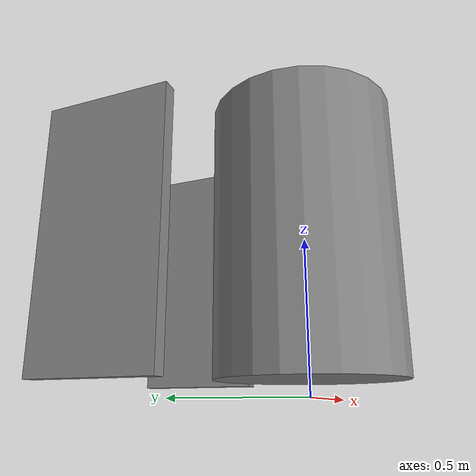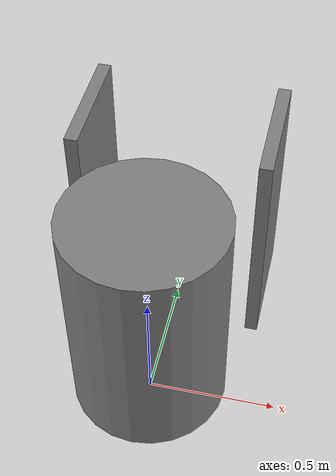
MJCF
<mujoco model="pr2_model">
    <worldbody name="base">
        <body name="pr2" pos="0 0 0.5">
            <joint axis="1 0 0" name="robot_x" type="slide" pos="0 0 0"/>
            <joint axis="0 1 0" name="robot_y" type="slide" pos="0 0 0"/>
            <geom name="pr2" type="cylinder" size="0.3 0.45" friction="1 1 1" />
            <inertial pos="0 0 0" mass="5" diaginertia="0.001 0.001 0.001" />
            <body name="right_finger" pos="-0.35 0.55 0">
                <inertial pos="0 0 0" mass="1" diaginertia="0.001 0.001 0.001" />
                <joint name="right_finger_joint" axis="1 0 0" limited="true" range="-0.1 0.1" type="slide" />
                <geom pos="0 0 0" size="0.025 0.225 0.45" type="box" />
            </body>
            <body name="left_finger" pos="0.35 0.55 0">
                <inertial pos="0 0 0" mass="1" diaginertia="0.001 0.001 0.001" />
                <joint name="left_finger_joint" axis="-1 0 0" limited="true" range="-0.1 0.1" type="slide" />
                <geom pos="0 0 0" size="0.025 0.225 0.45" type="box" />
            </body>
        </body>
    </worldbody>

    <actuator>
        <velocity gear="1" kv="2000" joint="robot_x" name="robot_x" ctrllimited="true" ctrlrange="-50 50" />
        <velocity gear="1" kv="2000" joint="robot_y" name="robot_y" ctrllimited="true" ctrlrange="-50 50" />
        <velocity gear="1" kv="100" joint="left_finger_joint" name="left_grip" ctrllimited="true" ctrlrange="-10 10" />
        <velocity gear="1" kv="100" joint="right_finger_joint" name="right_grip" ctrllimited="true" ctrlrange="-10 10" />
    </actuator>
</mujoco>
